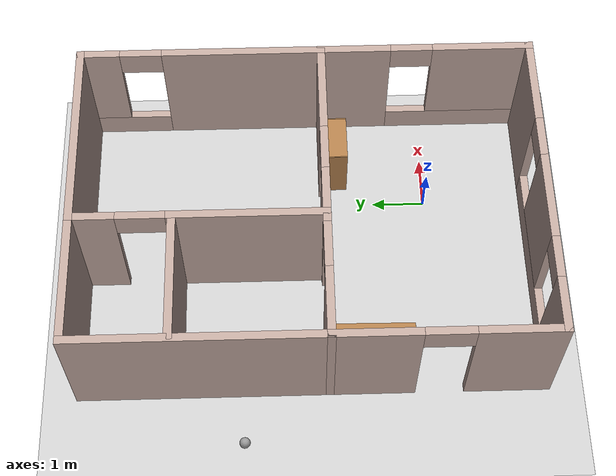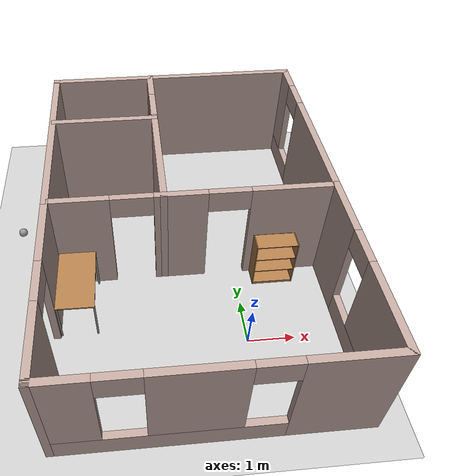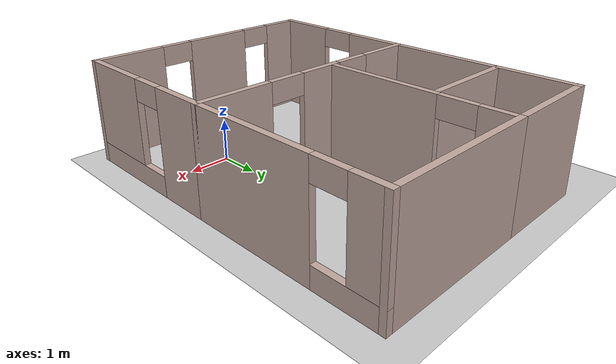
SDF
<sdf version="1.7">
 <world name="default">
  <light name="sun" type="directional">
   <pose>0 0 10 0 -0 0</pose>
   <diffuse>0.8 0.8 0.8 1</diffuse>
   <specular>0.2 0.2 0.2 1</specular>
   <attenuation>
    <range>1000</range>
    <constant>0.9</constant>
    <linear>0.01</linear>
    <quadratic>0.001</quadratic>
   </attenuation>
   <direction>-0.5 0.1 -0.9</direction>
   <spot><inner_angle>0</inner_angle><outer_angle>0</outer_angle><falloff>0</falloff></spot>
  </light>
  <model name="ground_plane">
   <static>1</static>
   <link name="link">
    <collision name="collision">
     <geometry><plane><normal>0 0 1</normal><size>100 100</size></plane></geometry>
     <surface>
      <contact><collide_bitmask>65535</collide_bitmask></contact>
      <friction><ode><mu>100</mu><mu2>50</mu2></ode></friction>
     </surface>
    </collision>
    <visual name="visual">
     <cast_shadows>0</cast_shadows>
     <geometry><plane><normal>0 0 1</normal><size>100 100</size></plane></geometry>
     <material>
      <script><uri>file://media/materials/scripts/gazebo.material</uri><name>Gazebo/Grey</name></script>
     </material>
    </visual>
   </link>
  </model>
  <gravity>0 0 -9.8</gravity>
  <magnetic_field>6e-06 2.3e-05 -4.2e-05</magnetic_field>
  <atmosphere type="adiabatic"/>
  <physics type="ode">
   <max_step_size>0.001</max_step_size>
   <real_time_factor>1</real_time_factor>
   <real_time_update_rate>1000</real_time_update_rate>
  </physics>
  <scene><ambient>0.4 0.4 0.4 1</ambient><background>0.7 0.7 0.7 1</background><shadows>1</shadows></scene>
  <spherical_coordinates>
   <surface_model>EARTH_WGS84</surface_model>
   <latitude_deg>0</latitude_deg>
   <longitude_deg>0</longitude_deg>
   <elevation>0</elevation>
   <heading_deg>0</heading_deg>
  </spherical_coordinates>
  <model name="Apartment">
   <pose>-1 2.3 0 0 -0 0</pose>
   <link name="Wall_0">
    <pose>-3 -2.3 0 0 -0 -1.5708</pose>
    <visual name="Wall_0_Visual_0">
     <pose>-1.251 0 1.25 0 -0 0</pose>
     <geometry><box><size>1.648 0.15 2.5</size></box></geometry>
     <material>
      <script><uri>file://media/materials/scripts/gazebo.material</uri><name>Gazebo/Grey</name></script>
      <ambient>0.760784 0.662745 0.627451 1</ambient>
     </material>
     <meta><layer>0</layer></meta>
    </visual>
    <collision name="Wall_0_Collision_0">
     <geometry><box><size>1.648 0.15 2.5</size></box></geometry>
     <pose>-1.251 0 1.25 0 -0 0</pose>
    </collision>
    <visual name="Wall_0_Visual_1">
     <pose>1.274 0 1.25 0 -0 0</pose>
     <geometry><box><size>1.602 0.15 2.5</size></box></geometry>
     <material>
      <script><uri>file://media/materials/scripts/gazebo.material</uri><name>Gazebo/Grey</name></script>
      <ambient>0.760784 0.662745 0.627451 1</ambient>
     </material>
     <meta><layer>0</layer></meta>
    </visual>
    <collision name="Wall_0_Collision_1">
     <geometry><box><size>1.602 0.15 2.5</size></box></geometry>
     <pose>1.274 0 1.25 0 -0 0</pose>
    </collision>
    <visual name="Wall_0_Visual_2">
     <pose>0.023004 0 2.25 0 -0 0</pose>
     <geometry><box><size>0.9 0.15 0.5</size></box></geometry>
     <material>
      <script><uri>file://media/materials/scripts/gazebo.material</uri><name>Gazebo/Grey</name></script>
      <ambient>0.760784 0.662745 0.627451 1</ambient>
     </material>
     <meta><layer>0</layer></meta>
    </visual>
    <collision name="Wall_0_Collision_2">
     <geometry><box><size>0.9 0.15 0.5</size></box></geometry>
     <pose>0.023004 0 2.25 0 -0 0</pose>
    </collision>
   </link>
   <link name="Wall_10">
    <collision name="Wall_10_Collision">
     <geometry><box><size>4.75 0.15 2.5</size></box></geometry>
     <pose>0 0 1.25 0 -0 0</pose>
    </collision>
    <visual name="Wall_10_Visual">
     <pose>0 0 1.25 0 -0 0</pose>
     <geometry><box><size>4.75 0.15 2.5</size></box></geometry>
     <material>
      <script><uri>file://media/materials/scripts/gazebo.material</uri><name>Gazebo/Grey</name></script>
      <ambient>0.760784 0.662745 0.627451 1</ambient>
     </material>
     <meta><layer>0</layer></meta>
    </visual>
    <pose>-3 2 0 0 -0 1.5708</pose>
   </link>
   <link name="Wall_11">
    <collision name="Wall_11_Collision">
     <geometry><box><size>2.55 0.15 2.5</size></box></geometry>
     <pose>0 0 1.25 0 -0 0</pose>
    </collision>
    <visual name="Wall_11_Visual">
     <pose>0 0 1.25 0 -0 0</pose>
     <geometry><box><size>2.55 0.15 2.5</size></box></geometry>
     <material>
      <script><uri>file://media/materials/scripts/gazebo.material</uri><name>Gazebo/Grey</name></script>
      <ambient>0.760784 0.662745 0.627451 1</ambient>
     </material>
     <meta><layer>0</layer></meta>
    </visual>
    <pose>-1.8 4.3 0 0 -0 0</pose>
   </link>
   <link name="Wall_13">
    <collision name="Wall_13_Collision">
     <geometry><box><size>2.5 0.15 2.5</size></box></geometry>
     <pose>0 0 1.25 0 -0 0</pose>
    </collision>
    <visual name="Wall_13_Visual">
     <pose>0 0 1.25 0 -0 0</pose>
     <geometry><box><size>2.5 0.15 2.5</size></box></geometry>
     <material>
      <script><uri>file://media/materials/scripts/gazebo.material</uri><name>Gazebo/Grey</name></script>
      <ambient>0.760784 0.662745 0.627451 1</ambient>
     </material>
     <meta><layer>0</layer></meta>
    </visual>
    <pose>-1.7824 2.46927 0 0 -0 3.14159</pose>
   </link>
   <link name="Wall_2">
    <pose>0 -0.3 0 0 -0 0</pose>
    <visual name="Wall_2_Visual_0">
     <pose>-2.38977 0 1.25 0 -0 0</pose>
     <geometry><box><size>1.37047 0.15 2.5</size></box></geometry>
     <material>
      <script><uri>file://media/materials/scripts/gazebo.material</uri><name>Gazebo/Grey</name></script>
      <ambient>0.760784 0.662745 0.627451 1</ambient>
     </material>
     <meta><layer>0</layer></meta>
    </visual>
    <collision name="Wall_2_Collision_0">
     <geometry><box><size>1.37047 0.15 2.5</size></box></geometry>
     <pose>-2.38977 0 1.25 0 -0 0</pose>
    </collision>
    <visual name="Wall_2_Visual_1">
     <pose>-0.240108 0 1.25 0 -0 0</pose>
     <geometry><box><size>1.12885 0.15 2.5</size></box></geometry>
     <material>
      <script><uri>file://media/materials/scripts/gazebo.material</uri><name>Gazebo/Grey</name></script>
      <ambient>0.760784 0.662745 0.627451 1</ambient>
     </material>
     <meta><layer>0</layer></meta>
    </visual>
    <collision name="Wall_2_Collision_1">
     <geometry><box><size>1.12885 0.15 2.5</size></box></geometry>
     <pose>-0.240108 0 1.25 0 -0 0</pose>
    </collision>
    <visual name="Wall_2_Visual_2">
     <pose>2.14966 0 1.25 0 -0 0</pose>
     <geometry><box><size>1.85068 0.15 2.5</size></box></geometry>
     <material>
      <script><uri>file://media/materials/scripts/gazebo.material</uri><name>Gazebo/Grey</name></script>
      <ambient>0.760784 0.662745 0.627451 1</ambient>
     </material>
     <meta><layer>0</layer></meta>
    </visual>
    <collision name="Wall_2_Collision_2">
     <geometry><box><size>1.85068 0.15 2.5</size></box></geometry>
     <pose>2.14966 0 1.25 0 -0 0</pose>
    </collision>
    <visual name="Wall_2_Visual_3">
     <pose>-1.25453 0 2.25 0 -0 0</pose>
     <geometry><box><size>0.9 0.15 0.5</size></box></geometry>
     <material>
      <script><uri>file://media/materials/scripts/gazebo.material</uri><name>Gazebo/Grey</name></script>
      <ambient>0.760784 0.662745 0.627451 1</ambient>
     </material>
     <meta><layer>0</layer></meta>
    </visual>
    <collision name="Wall_2_Collision_3">
     <geometry><box><size>0.9 0.15 0.5</size></box></geometry>
     <pose>-1.25453 0 2.25 0 -0 0</pose>
    </collision>
    <visual name="Wall_2_Visual_4">
     <pose>0.774316 0 2.25 0 -0 0</pose>
     <geometry><box><size>0.9 0.15 0.5</size></box></geometry>
     <material>
      <script><uri>file://media/materials/scripts/gazebo.material</uri><name>Gazebo/Grey</name></script>
      <ambient>0.760784 0.662745 0.627451 1</ambient>
     </material>
     <meta><layer>0</layer></meta>
    </visual>
    <collision name="Wall_2_Collision_4">
     <geometry><box><size>0.9 0.15 0.5</size></box></geometry>
     <pose>0.774316 0 2.25 0 -0 0</pose>
    </collision>
   </link>
   <link name="Wall_3">
    <pose>3 -2.3 0 0 -0 -1.5708</pose>
    <visual name="Wall_3_Visual_0">
     <pose>-1.36703 0 1.25 0 -0 0</pose>
     <geometry><box><size>1.41593 0.15 2.5</size></box></geometry>
     <material>
      <script><uri>file://media/materials/scripts/gazebo.material</uri><name>Gazebo/Grey</name></script>
      <ambient>0.760784 0.662745 0.627451 1</ambient>
     </material>
     <meta><layer>0</layer></meta>
    </visual>
    <collision name="Wall_3_Collision_0">
     <geometry><box><size>1.41593 0.15 2.5</size></box></geometry>
     <pose>-1.36703 0 1.25 0 -0 0</pose>
    </collision>
    <visual name="Wall_3_Visual_1">
     <pose>0.707968 0 0.25 0 -0 0</pose>
     <geometry><box><size>2.73407 0.15 0.5</size></box></geometry>
     <material>
      <script><uri>file://media/materials/scripts/gazebo.material</uri><name>Gazebo/Grey</name></script>
      <ambient>0.760784 0.662745 0.627451 1</ambient>
     </material>
     <meta><layer>0</layer></meta>
    </visual>
    <collision name="Wall_3_Collision_1">
     <geometry><box><size>2.73407 0.15 0.5</size></box></geometry>
     <pose>0.707968 0 0.25 0 -0 0</pose>
    </collision>
    <visual name="Wall_3_Visual_2">
     <pose>1.10797 0 1.5 0 -0 0</pose>
     <geometry><box><size>1.93406 0.15 2</size></box></geometry>
     <material>
      <script><uri>file://media/materials/scripts/gazebo.material</uri><name>Gazebo/Grey</name></script>
      <ambient>0.760784 0.662745 0.627451 1</ambient>
     </material>
     <meta><layer>0</layer></meta>
    </visual>
    <collision name="Wall_3_Collision_2">
     <geometry><box><size>1.93406 0.15 2</size></box></geometry>
     <pose>1.10797 0 1.5 0 -0 0</pose>
    </collision>
    <visual name="Wall_3_Visual_3">
     <pose>-0.259065 0 2.25 0 -0 0</pose>
     <geometry><box><size>0.8 0.15 0.5</size></box></geometry>
     <material>
      <script><uri>file://media/materials/scripts/gazebo.material</uri><name>Gazebo/Grey</name></script>
      <ambient>0.760784 0.662745 0.627451 1</ambient>
     </material>
     <meta><layer>0</layer></meta>
    </visual>
    <collision name="Wall_3_Collision_3">
     <geometry><box><size>0.8 0.15 0.5</size></box></geometry>
     <pose>-0.259065 0 2.25 0 -0 0</pose>
    </collision>
   </link>
   <link name="Wall_4">
    <pose>0 -4.3 0 0 -0 3.14159</pose>
    <visual name="Wall_4_Visual_0">
     <pose>-2.18621 0 1.25 0 -0 0</pose>
     <geometry><box><size>1.77758 0.15 2.5</size></box></geometry>
     <material>
      <script><uri>file://media/materials/scripts/gazebo.material</uri><name>Gazebo/Grey</name></script>
      <ambient>0.760784 0.662745 0.627451 1</ambient>
     </material>
     <meta><layer>0</layer></meta>
    </visual>
    <collision name="Wall_4_Collision_0">
     <geometry><box><size>1.77758 0.15 2.5</size></box></geometry>
     <pose>-2.18621 0 1.25 0 -0 0</pose>
    </collision>
    <visual name="Wall_4_Visual_1">
     <pose>0.888791 0 0.25 0 -0 0</pose>
     <geometry><box><size>4.37242 0.15 0.5</size></box></geometry>
     <material>
      <script><uri>file://media/materials/scripts/gazebo.material</uri><name>Gazebo/Grey</name></script>
      <ambient>0.760784 0.662745 0.627451 1</ambient>
     </material>
     <meta><layer>0</layer></meta>
    </visual>
    <collision name="Wall_4_Collision_1">
     <geometry><box><size>4.37242 0.15 0.5</size></box></geometry>
     <pose>0.888791 0 0.25 0 -0 0</pose>
    </collision>
    <visual name="Wall_4_Visual_2">
     <pose>0.361866 0 1.5 0 -0 0</pose>
     <geometry><box><size>1.71857 0.15 2</size></box></geometry>
     <material>
      <script><uri>file://media/materials/scripts/gazebo.material</uri><name>Gazebo/Grey</name></script>
      <ambient>0.760784 0.662745 0.627451 1</ambient>
     </material>
     <meta><layer>0</layer></meta>
    </visual>
    <collision name="Wall_4_Collision_2">
     <geometry><box><size>1.71857 0.15 2</size></box></geometry>
     <pose>0.361866 0 1.5 0 -0 0</pose>
    </collision>
    <visual name="Wall_4_Visual_3">
     <pose>2.54807 0 1.5 0 -0 0</pose>
     <geometry><box><size>1.05385 0.15 2</size></box></geometry>
     <material>
      <script><uri>file://media/materials/scripts/gazebo.material</uri><name>Gazebo/Grey</name></script>
      <ambient>0.760784 0.662745 0.627451 1</ambient>
     </material>
     <meta><layer>0</layer></meta>
    </visual>
    <collision name="Wall_4_Collision_3">
     <geometry><box><size>1.05385 0.15 2</size></box></geometry>
     <pose>2.54807 0 1.5 0 -0 0</pose>
    </collision>
    <visual name="Wall_4_Visual_4">
     <pose>-0.897419 0 2.25 0 -0 0</pose>
     <geometry><box><size>0.8 0.15 0.5</size></box></geometry>
     <material>
      <script><uri>file://media/materials/scripts/gazebo.material</uri><name>Gazebo/Grey</name></script>
      <ambient>0.760784 0.662745 0.627451 1</ambient>
     </material>
     <meta><layer>0</layer></meta>
    </visual>
    <collision name="Wall_4_Collision_4">
     <geometry><box><size>0.8 0.15 0.5</size></box></geometry>
     <pose>-0.897419 0 2.25 0 -0 0</pose>
    </collision>
    <visual name="Wall_4_Visual_5">
     <pose>1.62115 0 2.25 0 -0 0</pose>
     <geometry><box><size>0.8 0.15 0.5</size></box></geometry>
     <material>
      <script><uri>file://media/materials/scripts/gazebo.material</uri><name>Gazebo/Grey</name></script>
      <ambient>0.760784 0.662745 0.627451 1</ambient>
     </material>
     <meta><layer>0</layer></meta>
    </visual>
    <collision name="Wall_4_Collision_5">
     <geometry><box><size>0.8 0.15 0.5</size></box></geometry>
     <pose>1.62115 0 2.25 0 -0 0</pose>
    </collision>
   </link>
   <link name="Wall_6">
    <pose>3 2 0 0 -0 1.5708</pose>
    <visual name="Wall_6_Visual_0">
     <pose>-0.810693 0 1.25 0 -0 0</pose>
     <geometry><box><size>3.12861 0.15 2.5</size></box></geometry>
     <material>
      <script><uri>file://media/materials/scripts/gazebo.material</uri><name>Gazebo/Grey</name></script>
      <ambient>0.760784 0.662745 0.627451 1</ambient>
     </material>
     <meta><layer>0</layer></meta>
    </visual>
    <collision name="Wall_6_Collision_0">
     <geometry><box><size>3.12861 0.15 2.5</size></box></geometry>
     <pose>-0.810693 0 1.25 0 -0 0</pose>
    </collision>
    <visual name="Wall_6_Visual_1">
     <pose>1.56431 0 0.25 0 -0 0</pose>
     <geometry><box><size>1.62139 0.15 0.5</size></box></geometry>
     <material>
      <script><uri>file://media/materials/scripts/gazebo.material</uri><name>Gazebo/Grey</name></script>
      <ambient>0.760784 0.662745 0.627451 1</ambient>
     </material>
     <meta><layer>0</layer></meta>
    </visual>
    <collision name="Wall_6_Collision_1">
     <geometry><box><size>1.62139 0.15 0.5</size></box></geometry>
     <pose>1.56431 0 0.25 0 -0 0</pose>
    </collision>
    <visual name="Wall_6_Visual_2">
     <pose>1.96431 0 1.5 0 -0 0</pose>
     <geometry><box><size>0.821386 0.15 2</size></box></geometry>
     <material>
      <script><uri>file://media/materials/scripts/gazebo.material</uri><name>Gazebo/Grey</name></script>
      <ambient>0.760784 0.662745 0.627451 1</ambient>
     </material>
     <meta><layer>0</layer></meta>
    </visual>
    <collision name="Wall_6_Collision_2">
     <geometry><box><size>0.821386 0.15 2</size></box></geometry>
     <pose>1.96431 0 1.5 0 -0 0</pose>
    </collision>
    <visual name="Wall_6_Visual_3">
     <pose>1.15361 0 2.25 0 -0 0</pose>
     <geometry><box><size>0.8 0.15 0.5</size></box></geometry>
     <material>
      <script><uri>file://media/materials/scripts/gazebo.material</uri><name>Gazebo/Grey</name></script>
      <ambient>0.760784 0.662745 0.627451 1</ambient>
     </material>
     <meta><layer>0</layer></meta>
    </visual>
    <collision name="Wall_6_Collision_3">
     <geometry><box><size>0.8 0.15 0.5</size></box></geometry>
     <pose>1.15361 0 2.25 0 -0 0</pose>
    </collision>
   </link>
   <link name="Wall_7">
    <collision name="Wall_7_Collision">
     <geometry><box><size>3.75 0.15 2.5</size></box></geometry>
     <pose>0 0 1.25 0 -0 0</pose>
    </collision>
    <visual name="Wall_7_Visual">
     <pose>0 0 1.25 0 -0 0</pose>
     <geometry><box><size>3.75 0.15 2.5</size></box></geometry>
     <material>
      <script><uri>file://media/materials/scripts/gazebo.material</uri><name>Gazebo/Grey</name></script>
      <ambient>0.760784 0.662745 0.627451 1</ambient>
     </material>
     <meta><layer>0</layer></meta>
    </visual>
    <pose>1.2 4.3 0 0 -0 3.14159</pose>
   </link>
   <link name="Wall_8">
    <pose>-0.6 2 0 0 -0 -1.5708</pose>
    <visual name="Wall_8_Visual_0">
     <pose>-1.92698 0 1.25 0 -0 0</pose>
     <geometry><box><size>0.896045 0.15 2.5</size></box></geometry>
     <material>
      <script><uri>file://media/materials/scripts/gazebo.material</uri><name>Gazebo/Grey</name></script>
      <ambient>0.760784 0.662745 0.627451 1</ambient>
     </material>
     <meta><layer>0</layer></meta>
    </visual>
    <collision name="Wall_8_Collision_0">
     <geometry><box><size>0.896045 0.15 2.5</size></box></geometry>
     <pose>-1.92698 0 1.25 0 -0 0</pose>
    </collision>
    <visual name="Wall_8_Visual_1">
     <pose>0.898023 0 1.25 0 -0 0</pose>
     <geometry><box><size>2.95396 0.15 2.5</size></box></geometry>
     <material>
      <script><uri>file://media/materials/scripts/gazebo.material</uri><name>Gazebo/Grey</name></script>
      <ambient>0.760784 0.662745 0.627451 1</ambient>
     </material>
     <meta><layer>0</layer></meta>
    </visual>
    <collision name="Wall_8_Collision_1">
     <geometry><box><size>2.95396 0.15 2.5</size></box></geometry>
     <pose>0.898023 0 1.25 0 -0 0</pose>
    </collision>
    <visual name="Wall_8_Visual_2">
     <pose>-1.02896 0 2.25 0 -0 0</pose>
     <geometry><box><size>0.9 0.15 0.5</size></box></geometry>
     <material>
      <script><uri>file://media/materials/scripts/gazebo.material</uri><name>Gazebo/Grey</name></script>
      <ambient>0.760784 0.662745 0.627451 1</ambient>
     </material>
     <meta><layer>0</layer></meta>
    </visual>
    <collision name="Wall_8_Collision_2">
     <geometry><box><size>0.9 0.15 0.5</size></box></geometry>
     <pose>-1.02896 0 2.25 0 -0 0</pose>
    </collision>
   </link>
   <static>1</static>
  </model>
  <model name="bookshelf">
   <static>1</static>
   <link name="link">
    <inertial><mass>1</mass></inertial>
    <collision name="back">
     <pose>0 0.005 0.6 0 -0 0</pose>
     <geometry><box><size>0.9 0.01 1.2</size></box></geometry>
    </collision>
    <visual name="visual1">
     <pose>0 0.005 0.6 0 -0 0</pose>
     <geometry><box><size>0.9 0.01 1.2</size></box></geometry>
     <material>
      <script><uri>file://media/materials/scripts/gazebo.material</uri><name>Gazebo/Wood</name></script>
     </material>
    </visual>
    <collision name="left_side">
     <pose>0.45 -0.195 0.6 0 -0 0</pose>
     <geometry><box><size>0.02 0.4 1.2</size></box></geometry>
    </collision>
    <visual name="visual2">
     <pose>0.45 -0.195 0.6 0 -0 0</pose>
     <geometry><box><size>0.02 0.4 1.2</size></box></geometry>
     <material>
      <script><uri>file://media/materials/scripts/gazebo.material</uri><name>Gazebo/Wood</name></script>
     </material>
    </visual>
    <collision name="right_side">
     <pose>-0.45 -0.195 0.6 0 -0 0</pose>
     <geometry><box><size>0.02 0.4 1.2</size></box></geometry>
    </collision>
    <visual name="visual3">
     <pose>-0.45 -0.195 0.6 0 -0 0</pose>
     <geometry><box><size>0.02 0.4 1.2</size></box></geometry>
     <material>
      <script><uri>file://media/materials/scripts/gazebo.material</uri><name>Gazebo/Wood</name></script>
     </material>
    </visual>
    <collision name="bottom">
     <pose>0 -0.195 0.03 0 -0 0</pose>
     <geometry><box><size>0.88 0.4 0.06</size></box></geometry>
    </collision>
    <visual name="visual4">
     <pose>0 -0.195 0.03 0 -0 0</pose>
     <geometry><box><size>0.88 0.4 0.06</size></box></geometry>
     <material>
      <script><uri>file://media/materials/scripts/gazebo.material</uri><name>Gazebo/Wood</name></script>
     </material>
    </visual>
    <collision name="top">
     <pose>0 -0.195 1.19 0 -0 0</pose>
     <geometry><box><size>0.88 0.4 0.02</size></box></geometry>
    </collision>
    <visual name="visual5">
     <pose>0 -0.195 1.19 0 -0 0</pose>
     <geometry><box><size>0.88 0.4 0.02</size></box></geometry>
     <material>
      <script><uri>file://media/materials/scripts/gazebo.material</uri><name>Gazebo/Wood</name></script>
     </material>
    </visual>
    <collision name="low_shelf">
     <pose>0 -0.195 0.43 0 -0 0</pose>
     <geometry><box><size>0.88 0.4 0.02</size></box></geometry>
    </collision>
    <visual name="visual6">
     <pose>0 -0.195 0.43 0 -0 0</pose>
     <geometry><box><size>0.88 0.4 0.02</size></box></geometry>
     <material>
      <script><uri>file://media/materials/scripts/gazebo.material</uri><name>Gazebo/Wood</name></script>
     </material>
    </visual>
    <collision name="high_shelf">
     <pose>0 -0.195 0.8 0 -0 0</pose>
     <geometry><box><size>0.88 0.4 0.02</size></box></geometry>
    </collision>
    <visual name="visual7">
     <pose>0 -0.195 0.8 0 -0 0</pose>
     <geometry><box><size>0.88 0.4 0.02</size></box></geometry>
     <material>
      <script><uri>file://media/materials/scripts/gazebo.material</uri><name>Gazebo/Wood</name></script>
     </material>
    </visual>
   </link>
   <pose>0.836568 1.91209 0 0 -0 0</pose>
  </model>
  <model name="table">
   <static>1</static>
   <link name="link">
    <collision name="surface">
     <pose>0 0 1 0 -0 0</pose>
     <geometry><box><size>1.5 0.8 0.03</size></box></geometry>
     <surface><friction><ode><mu>0.6</mu><mu2>0.6</mu2></ode></friction></surface>
    </collision>
    <visual name="visual1">
     <pose>0 0 1 0 -0 0</pose>
     <geometry><box><size>1.5 0.8 0.03</size></box></geometry>
     <material>
      <script><uri>file://media/materials/scripts/gazebo.material</uri><name>Gazebo/Wood</name></script>
     </material>
    </visual>
    <collision name="front_left_leg">
     <pose>0.68 0.38 0.5 0 -0 0</pose>
     <geometry><cylinder><radius>0.02</radius><length>1</length></cylinder></geometry>
    </collision>
    <visual name="front_left_leg">
     <pose>0.68 0.38 0.5 0 -0 0</pose>
     <geometry><cylinder><radius>0.02</radius><length>1</length></cylinder></geometry>
     <material>
      <script><uri>file://media/materials/scripts/gazebo.material</uri><name>Gazebo/Grey</name></script>
     </material>
    </visual>
    <collision name="front_right_leg">
     <pose>0.68 -0.38 0.5 0 -0 0</pose>
     <geometry><cylinder><radius>0.02</radius><length>1</length></cylinder></geometry>
    </collision>
    <visual name="front_right_leg">
     <pose>0.68 -0.38 0.5 0 -0 0</pose>
     <geometry><cylinder><radius>0.02</radius><length>1</length></cylinder></geometry>
     <material>
      <script><uri>file://media/materials/scripts/gazebo.material</uri><name>Gazebo/Grey</name></script>
     </material>
    </visual>
    <collision name="back_right_leg">
     <pose>-0.68 -0.38 0.5 0 -0 0</pose>
     <geometry><cylinder><radius>0.02</radius><length>1</length></cylinder></geometry>
    </collision>
    <visual name="back_right_leg">
     <pose>-0.68 -0.38 0.5 0 -0 0</pose>
     <geometry><cylinder><radius>0.02</radius><length>1</length></cylinder></geometry>
     <material>
      <script><uri>file://media/materials/scripts/gazebo.material</uri><name>Gazebo/Grey</name></script>
     </material>
    </visual>
    <collision name="back_left_leg">
     <pose>-0.68 0.38 0.5 0 -0 0</pose>
     <geometry><cylinder><radius>0.02</radius><length>1</length></cylinder></geometry>
    </collision>
    <visual name="back_left_leg">
     <pose>-0.68 0.38 0.5 0 -0 0</pose>
     <geometry><cylinder><radius>0.02</radius><length>1</length></cylinder></geometry>
     <material>
      <script><uri>file://media/materials/scripts/gazebo.material</uri><name>Gazebo/Grey</name></script>
     </material>
    </visual>
   </link>
   <pose>-3.51868 1.17408 0 0 -0 1.56005</pose>
  </model>
  <model name="my_ball">
   <link name="link_0">
    <inertial>
     <mass>1</mass>
     <inertia><ixx>0.1</ixx><ixy>0</ixy><ixz>0</ixz><iyy>0.1</iyy><iyz>0</iyz><izz>0.1</izz></inertia>
    </inertial>
    <visual name="visual">
     <geometry><sphere><radius>0.1</radius></sphere></geometry>
     <material>
      <lighting>1</lighting>
      <script><uri>file://media/materials/scripts/gazebo.material</uri><name>Gazebo/Grey</name></script>
      <shader type="pixel"><normal_map>__default__</normal_map></shader>
      <ambient>1 1 1 1</ambient>
      <diffuse>1 1 1 1</diffuse>
      <specular>1 1 1 1</specular>
      <emissive>1 1 1 1</emissive>
     </material>
    </visual>
    <collision name="collision">
     <geometry><sphere><radius>0.1</radius></sphere></geometry>
     <surface>
      <friction>
       <ode><mu>1</mu><mu2>1</mu2><fdir1>0 0 0</fdir1><slip1>0</slip1><slip2>0</slip2></ode>
       <torsional>
        <coefficient>1</coefficient>
        <patch_radius>0</patch_radius>
        <surface_radius>0</surface_radius>
        <use_patch_radius>1</use_patch_radius>
        <ode><slip>0</slip></ode>
       </torsional>
      </friction>
      <bounce><restitution_coefficient>0</restitution_coefficient><threshold>1e+06</threshold></bounce>
      <contact>
       <collide_without_contact>0</collide_without_contact>
       <collide_without_contact_bitmask>1</collide_without_contact_bitmask>
       <collide_bitmask>1</collide_bitmask>
       <ode>
        <soft_cfm>0</soft_cfm>
        <soft_erp>0.2</soft_erp>
        <kp>1e+13</kp>
        <kd>1</kd>
        <max_vel>0.01</max_vel>
        <min_depth>0</min_depth>
       </ode>
       <bullet>
        <split_impulse>1</split_impulse>
        <split_impulse_penetration_threshold>-0.01</split_impulse_penetration_threshold>
        <soft_cfm>0</soft_cfm>
        <soft_erp>0.2</soft_erp>
        <kp>1e+13</kp>
        <kd>1</kd>
       </bullet>
      </contact>
     </surface>
    </collision>
   </link>
   <static>0</static>
   <pose>-5.01005 3.56806 0.1 0 -0 0</pose>
  </model>
 </world>
</sdf>
